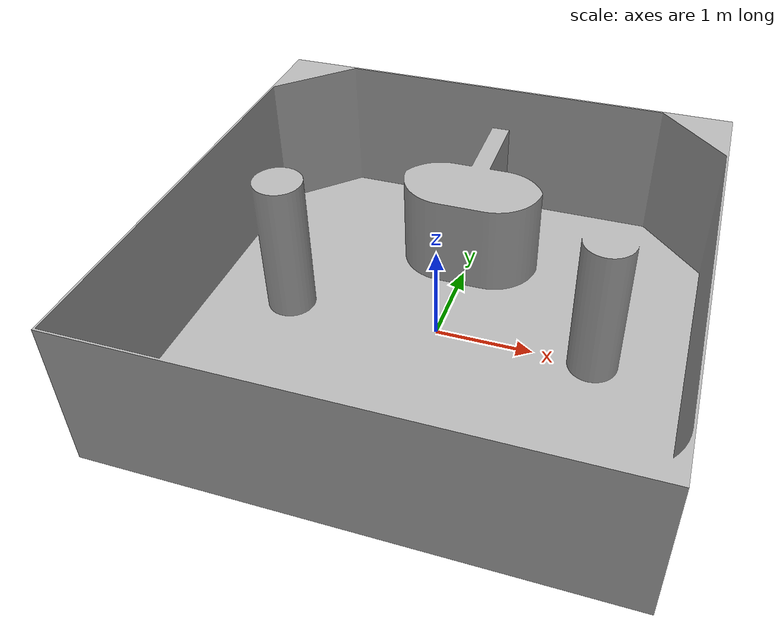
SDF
<?xml version="1.0"?>
<sdf version="1.9">
  <model name="escenario">
    <static>true</static>
    <link name="escenario_link">
      <visual name="escenario_visual">
        <geometry>
          <mesh>
            <uri>model://escenario/meshes/escenario.stl</uri>
            <scale>0.001 0.001 0.001</scale> <!-- pon 1 1 1 si ya está en metros -->
          </mesh>
        </geometry>
        <material>
          <ambient>0.7 0.7 0.7 1</ambient>
          <diffuse>0.7 0.7 0.7 1</diffuse>
        </material>
      </visual>
      <collision name="escenario_collision">
        <geometry>
          <mesh>
            <uri>model://escenario/meshes/escenario.stl</uri>
            <scale>0.001 0.001 0.001</scale>
          </mesh>
        </geometry>
      </collision>
    </link>
  </model>
</sdf>
